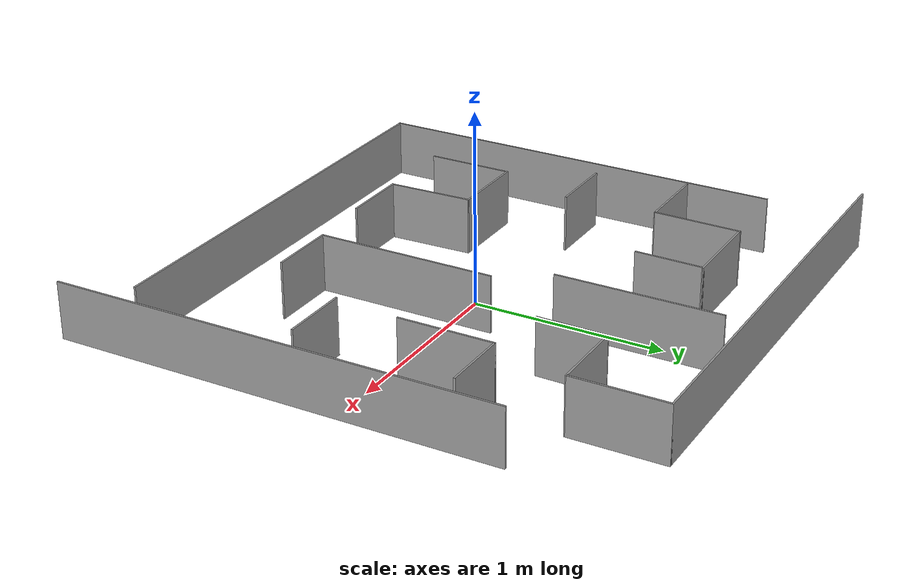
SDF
<?xml version='1.0'?>
<sdf version='1.7'>
  <model name='WorldTask2'>
    <pose>-0.1405 -0.047 0 0 -0 0</pose>
    <link name='Wall_18'>
      <collision name='Wall_18_Collision'>
        <geometry>
          <box>
            <size>2.436 0.01 0.3</size>
          </box>
        </geometry>
        <pose>0 0 0.15 0 -0 0</pose>
      </collision>
      <visual name='Wall_18_Visual'>
        <pose>0 0 0.15 0 -0 0</pose>
        <geometry>
          <box>
            <size>2.436 0.01 0.3</size>
          </box>
        </geometry>
        <material>
          <script>
            <uri>file://media/materials/scripts/gazebo.material</uri>
            <name>Gazebo/Grey</name>
          </script>
          <ambient>1 1 1 1</ambient>
        </material>
        <meta>
          <layer>0</layer>
        </meta>
      </visual>
      <pose>-0.1745 1.47 0 0 -0 0</pose>
    </link>
    <link name='Wall_19'>
      <collision name='Wall_19_Collision'>
        <geometry>
          <box>
            <size>0.496 0.01 0.3</size>
          </box>
        </geometry>
        <pose>0 0 0.15 0 -0 0</pose>
      </collision>
      <visual name='Wall_19_Visual'>
        <pose>0 0 0.15 0 -0 0</pose>
        <geometry>
          <box>
            <size>0.496 0.01 0.3</size>
          </box>
        </geometry>
        <material>
          <script>
            <uri>file://media/materials/scripts/gazebo.material</uri>
            <name>Gazebo/Grey</name>
          </script>
          <ambient>1 1 1 1</ambient>
        </material>
        <meta>
          <layer>0</layer>
        </meta>
      </visual>
      <pose>1.0385 1.227 0 0 -0 -1.5708</pose>
    </link>
    <link name='Wall_20'>
      <collision name='Wall_20_Collision'>
        <geometry>
          <box>
            <size>0.413001 0.01 0.3</size>
          </box>
        </geometry>
        <pose>0 0 0.15 0 -0 0</pose>
      </collision>
      <visual name='Wall_20_Visual'>
        <pose>0 0 0.15 0 -0 0</pose>
        <geometry>
          <box>
            <size>0.413001 0.01 0.3</size>
          </box>
        </geometry>
        <material>
          <script>
            <uri>file://media/materials/scripts/gazebo.material</uri>
            <name>Gazebo/Grey</name>
          </script>
          <ambient>1 1 1 1</ambient>
        </material>
        <meta>
          <layer>0</layer>
        </meta>
      </visual>
      <pose>0.837 0.9835 0 0 -0 -3.13911</pose>
    </link>
    <link name='Wall_21'>
      <collision name='Wall_21_Collision'>
        <geometry>
          <box>
            <size>0.360091 0.01 0.3</size>
          </box>
        </geometry>
        <pose>0 0 0.15 0 -0 0</pose>
      </collision>
      <visual name='Wall_21_Visual'>
        <pose>0 0 0.15 0 -0 0</pose>
        <geometry>
          <box>
            <size>0.360091 0.01 0.3</size>
          </box>
        </geometry>
        <material>
          <script>
            <uri>file://media/materials/scripts/gazebo.material</uri>
            <name>Gazebo/Grey</name>
          </script>
          <ambient>1 1 1 1</ambient>
        </material>
        <meta>
          <layer>0</layer>
        </meta>
      </visual>
      <pose>0.6315 0.808 0 0 -0 -1.59365</pose>
    </link>
    <link name='Wall_23'>
      <collision name='Wall_23_Collision'>
        <geometry>
          <box>
            <size>2.36 0.01 0.3</size>
          </box>
        </geometry>
        <pose>0 0 0.15 0 -0 0</pose>
      </collision>
      <visual name='Wall_23_Visual'>
        <pose>0 0 0.15 0 -0 0</pose>
        <geometry>
          <box>
            <size>2.36 0.01 0.3</size>
          </box>
        </geometry>
        <material>
          <script>
            <uri>file://media/materials/scripts/gazebo.material</uri>
            <name>Gazebo/Grey</name>
          </script>
          <ambient>1 1 1 1</ambient>
        </material>
        <meta>
          <layer>0</layer>
        </meta>
      </visual>
      <pose>1.3875 -0.295 0 0 -0 -1.5708</pose>
    </link>
    <link name='Wall_25'>
      <collision name='Wall_25_Collision'>
        <geometry>
          <box>
            <size>2.36 0.01 0.3</size>
          </box>
        </geometry>
        <pose>0 0 0.15 0 -0 0</pose>
      </collision>
      <visual name='Wall_25_Visual'>
        <pose>0 0 0.15 0 -0 0</pose>
        <geometry>
          <box>
            <size>2.36 0.01 0.3</size>
          </box>
        </geometry>
        <material>
          <script>
            <uri>file://media/materials/scripts/gazebo.material</uri>
            <name>Gazebo/Grey</name>
          </script>
          <ambient>1 1 1 1</ambient>
        </material>
        <meta>
          <layer>0</layer>
        </meta>
      </visual>
      <pose>0.0825 -1.124 0 0 -0 0</pose>
    </link>
    <link name='Wall_27'>
      <collision name='Wall_27_Collision'>
        <geometry>
          <box>
            <size>2.196 0.01 0.3</size>
          </box>
        </geometry>
        <pose>0 0 0.15 0 -0 0</pose>
      </collision>
      <visual name='Wall_27_Visual'>
        <pose>0 0 0.15 0 -0 0</pose>
        <geometry>
          <box>
            <size>2.196 0.01 0.3</size>
          </box>
        </geometry>
        <material>
          <script>
            <uri>file://media/materials/scripts/gazebo.material</uri>
            <name>Gazebo/Grey</name>
          </script>
          <ambient>1 1 1 1</ambient>
        </material>
        <meta>
          <layer>0</layer>
        </meta>
      </visual>
      <pose>-1.0925 -0.031 0 0 -0 -1.5708</pose>
    </link>
    <link name='Wall_29'>
      <collision name='Wall_29_Collision'>
        <geometry>
          <box>
            <size>0.412 0.01 0.3</size>
          </box>
        </geometry>
        <pose>0 0 0.15 0 -0 0</pose>
      </collision>
      <visual name='Wall_29_Visual'>
        <pose>0 0 0.15 0 -0 0</pose>
        <geometry>
          <box>
            <size>0.412 0.01 0.3</size>
          </box>
        </geometry>
        <material>
          <script>
            <uri>file://media/materials/scripts/gazebo.material</uri>
            <name>Gazebo/Grey</name>
          </script>
          <ambient>1 1 1 1</ambient>
        </material>
        <meta>
          <layer>0</layer>
        </meta>
      </visual>
      <pose>-0.8685 0.631 0 0 -0 0</pose>
    </link>
    <link name='Wall_33'>
      <collision name='Wall_33_Collision'>
        <geometry>
          <box>
            <size>0.466265 0.01 0.3</size>
          </box>
        </geometry>
        <pose>0 0 0.15 0 -0 0</pose>
      </collision>
      <visual name='Wall_33_Visual'>
        <pose>0 0 0.15 0 -0 0</pose>
        <geometry>
          <box>
            <size>0.466265 0.01 0.3</size>
          </box>
        </geometry>
        <material>
          <script>
            <uri>file://media/materials/scripts/gazebo.material</uri>
            <name>Gazebo/Grey</name>
          </script>
          <ambient>1 1 1 1</ambient>
        </material>
        <meta>
          <layer>0</layer>
        </meta>
      </visual>
      <pose>-0.6635 0.859 0 0 -0 -1.58834</pose>
    </link>
    <link name='Wall_36'>
      <collision name='Wall_36_Collision'>
        <geometry>
          <box>
            <size>0.473 0.01 0.3</size>
          </box>
        </geometry>
        <pose>0 0 0.15 0 -0 0</pose>
      </collision>
      <visual name='Wall_36_Visual'>
        <pose>0 0 0.15 0 -0 0</pose>
        <geometry>
          <box>
            <size>0.473 0.01 0.3</size>
          </box>
        </geometry>
        <material>
          <script>
            <uri>file://media/materials/scripts/gazebo.material</uri>
            <name>Gazebo/Grey</name>
          </script>
          <ambient>1 1 1 1</ambient>
        </material>
        <meta>
          <layer>0</layer>
        </meta>
      </visual>
      <pose>-0.428 1.087 0 0 -0 3.14159</pose>
    </link>
    <link name='Wall_38'>
      <collision name='Wall_38_Collision'>
        <geometry>
          <box>
            <size>0.36007 0.01 0.3</size>
          </box>
        </geometry>
        <pose>0 0 0.15 0 -0 0</pose>
      </collision>
      <visual name='Wall_38_Visual'>
        <pose>0 0 0.15 0 -0 0</pose>
        <geometry>
          <box>
            <size>0.36007 0.01 0.3</size>
          </box>
        </geometry>
        <material>
          <script>
            <uri>file://media/materials/scripts/gazebo.material</uri>
            <name>Gazebo/Grey</name>
          </script>
          <ambient>1 1 1 1</ambient>
        </material>
        <meta>
          <layer>0</layer>
        </meta>
      </visual>
      <pose>-0.2 0.912 0 0 -0 -1.59079</pose>
    </link>
    <link name='Wall_40'>
      <collision name='Wall_40_Collision'>
        <geometry>
          <box>
            <size>0.36 0.01 0.3</size>
          </box>
        </geometry>
        <pose>0 0 0.15 0 -0 0</pose>
      </collision>
      <visual name='Wall_40_Visual'>
        <pose>0 0 0.15 0 -0 0</pose>
        <geometry>
          <box>
            <size>0.36 0.01 0.3</size>
          </box>
        </geometry>
        <material>
          <script>
            <uri>file://media/materials/scripts/gazebo.material</uri>
            <name>Gazebo/Grey</name>
          </script>
          <ambient>1 1 1 1</ambient>
        </material>
        <meta>
          <layer>0</layer>
        </meta>
      </visual>
      <pose>-0.7985 0.154 0 0 -0 3.14159</pose>
    </link>
    <link name='Wall_42'>
      <collision name='Wall_42_Collision'>
        <geometry>
          <box>
            <size>0.451 0.01 0.3</size>
          </box>
        </geometry>
        <pose>0 0 0.15 0 -0 0</pose>
      </collision>
      <visual name='Wall_42_Visual'>
        <pose>0 0 0.15 0 -0 0</pose>
        <geometry>
          <box>
            <size>0.451 0.01 0.3</size>
          </box>
        </geometry>
        <material>
          <script>
            <uri>file://media/materials/scripts/gazebo.material</uri>
            <name>Gazebo/Grey</name>
          </script>
          <ambient>1 1 1 1</ambient>
        </material>
        <meta>
          <layer>0</layer>
        </meta>
      </visual>
      <pose>-0.7675 -0.4875 0 0 -0 1.5708</pose>
    </link>
    <link name='Wall_44'>
      <collision name='Wall_44_Collision'>
        <geometry>
          <box>
            <size>0.428 0.01 0.3</size>
          </box>
        </geometry>
        <pose>0 0 0.15 0 -0 0</pose>
      </collision>
      <visual name='Wall_44_Visual'>
        <pose>0 0 0.15 0 -0 0</pose>
        <geometry>
          <box>
            <size>0.428 0.01 0.3</size>
          </box>
        </geometry>
        <material>
          <script>
            <uri>file://media/materials/scripts/gazebo.material</uri>
            <name>Gazebo/Grey</name>
          </script>
          <ambient>1 1 1 1</ambient>
        </material>
        <meta>
          <layer>0</layer>
        </meta>
      </visual>
      <pose>-0.5585 -0.267 0 0 -0 3.14159</pose>
    </link>
    <link name='Wall_46'>
      <collision name='Wall_46_Collision'>
        <geometry>
          <box>
            <size>0.451255 0.01 0.3</size>
          </box>
        </geometry>
        <pose>0 0 0.15 0 -0 0</pose>
      </collision>
      <visual name='Wall_46_Visual'>
        <pose>0 0 0.15 0 -0 0</pose>
        <geometry>
          <box>
            <size>0.451255 0.01 0.3</size>
          </box>
        </geometry>
        <material>
          <script>
            <uri>file://media/materials/scripts/gazebo.material</uri>
            <name>Gazebo/Grey</name>
          </script>
          <ambient>1 1 1 1</ambient>
        </material>
        <meta>
          <layer>0</layer>
        </meta>
      </visual>
      <pose>-0.342 -0.4875 0 0 -0 1.6048</pose>
    </link>
    <link name='Wall_48'>
      <collision name='Wall_48_Collision'>
        <geometry>
          <box>
            <size>0.36 0.01 0.3</size>
          </box>
        </geometry>
        <pose>0 0 0.15 0 -0 0</pose>
      </collision>
      <visual name='Wall_48_Visual'>
        <pose>0 0 0.15 0 -0 0</pose>
        <geometry>
          <box>
            <size>0.36 0.01 0.3</size>
          </box>
        </geometry>
        <material>
          <script>
            <uri>file://media/materials/scripts/gazebo.material</uri>
            <name>Gazebo/Grey</name>
          </script>
          <ambient>1 1 1 1</ambient>
        </material>
        <meta>
          <layer>0</layer>
        </meta>
      </visual>
      <pose>-0.1595 -0.708 0 0 -0 3.14159</pose>
    </link>
    <link name='Wall_50'>
      <collision name='Wall_50_Collision'>
        <geometry>
          <box>
            <size>0.86 0.01 0.3</size>
          </box>
        </geometry>
        <pose>0 0 0.15 0 -0 0</pose>
      </collision>
      <visual name='Wall_50_Visual'>
        <pose>0 0 0.15 0 -0 0</pose>
        <geometry>
          <box>
            <size>0.86 0.01 0.3</size>
          </box>
        </geometry>
        <material>
          <script>
            <uri>file://media/materials/scripts/gazebo.material</uri>
            <name>Gazebo/Grey</name>
          </script>
          <ambient>1 1 1 1</ambient>
        </material>
        <meta>
          <layer>0</layer>
        </meta>
      </visual>
      <pose>0.2075 0.935 0 0 -0 1.5708</pose>
    </link>
    <link name='Wall_52'>
      <collision name='Wall_52_Collision'>
        <geometry>
          <box>
            <size>0.944 0.01 0.3</size>
          </box>
        </geometry>
        <pose>0 0 0.15 0 -0 0</pose>
      </collision>
      <visual name='Wall_52_Visual'>
        <pose>0 0 0.15 0 -0 0</pose>
        <geometry>
          <box>
            <size>0.944 0.01 0.3</size>
          </box>
        </geometry>
        <material>
          <script>
            <uri>file://media/materials/scripts/gazebo.material</uri>
            <name>Gazebo/Grey</name>
          </script>
          <ambient>1 1 1 1</ambient>
        </material>
        <meta>
          <layer>0</layer>
        </meta>
      </visual>
      <pose>0.3665 -0.214 0 0 -0 -1.5708</pose>
    </link>
    <link name='Wall_54'>
      <collision name='Wall_54_Collision'>
        <geometry>
          <box>
            <size>0.36 0.01 0.3</size>
          </box>
        </geometry>
        <pose>0 0 0.15 0 -0 0</pose>
      </collision>
      <visual name='Wall_54_Visual'>
        <pose>0 0 0.15 0 -0 0</pose>
        <geometry>
          <box>
            <size>0.36 0.01 0.3</size>
          </box>
        </geometry>
        <material>
          <script>
            <uri>file://media/materials/scripts/gazebo.material</uri>
            <name>Gazebo/Grey</name>
          </script>
          <ambient>1 1 1 1</ambient>
        </material>
        <meta>
          <layer>0</layer>
        </meta>
      </visual>
      <pose>0.5415 -0.681 0 0 -0 3.14159</pose>
    </link>
    <link name='Wall_56'>
      <collision name='Wall_56_Collision'>
        <geometry>
          <box>
            <size>0.36 0.01 0.3</size>
          </box>
        </geometry>
        <pose>0 0 0.15 0 -0 0</pose>
      </collision>
      <visual name='Wall_56_Visual'>
        <pose>0 0 0.15 0 -0 0</pose>
        <geometry>
          <box>
            <size>0.36 0.01 0.3</size>
          </box>
        </geometry>
        <material>
          <script>
            <uri>file://media/materials/scripts/gazebo.material</uri>
            <name>Gazebo/Grey</name>
          </script>
          <ambient>1 1 1 1</ambient>
        </material>
        <meta>
          <layer>0</layer>
        </meta>
      </visual>
      <pose>1.0785 -0.254 0 0 -0 0</pose>
    </link>
    <link name='Wall_59'>
      <collision name='Wall_59_Collision'>
        <geometry>
          <box>
            <size>0.36 0.01 0.3</size>
          </box>
        </geometry>
        <pose>0 0 0.15 0 -0 0</pose>
      </collision>
      <visual name='Wall_59_Visual'>
        <pose>0 0 0.15 0 -0 0</pose>
        <geometry>
          <box>
            <size>0.36 0.01 0.3</size>
          </box>
        </geometry>
        <material>
          <script>
            <uri>file://media/materials/scripts/gazebo.material</uri>
            <name>Gazebo/Grey</name>
          </script>
          <ambient>1 1 1 1</ambient>
        </material>
        <meta>
          <layer>0</layer>
        </meta>
      </visual>
      <pose>1.1085 0.585 0 0 -0 0</pose>
    </link>
    <link name='Wall_61'>
      <collision name='Wall_61_Collision'>
        <geometry>
          <box>
            <size>0.501 0.01 0.3</size>
          </box>
        </geometry>
        <pose>0 0 0.15 0 -0 0</pose>
      </collision>
      <visual name='Wall_61_Visual'>
        <pose>0 0 0.15 0 -0 0</pose>
        <geometry>
          <box>
            <size>0.501 0.01 0.3</size>
          </box>
        </geometry>
        <material>
          <script>
            <uri>file://media/materials/scripts/gazebo.material</uri>
            <name>Gazebo/Grey</name>
          </script>
          <ambient>1 1 1 1</ambient>
        </material>
        <meta>
          <layer>0</layer>
        </meta>
      </visual>
      <pose>0.9335 0.3395 0 0 -0 1.5708</pose>
    </link>
    <static>1</static>
  </model>
</sdf>
